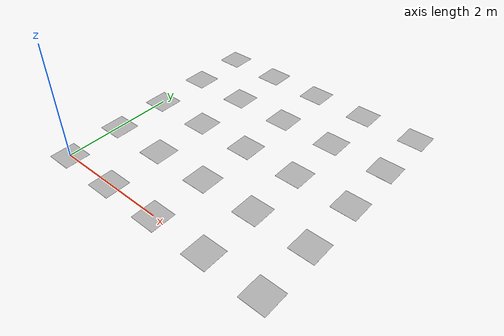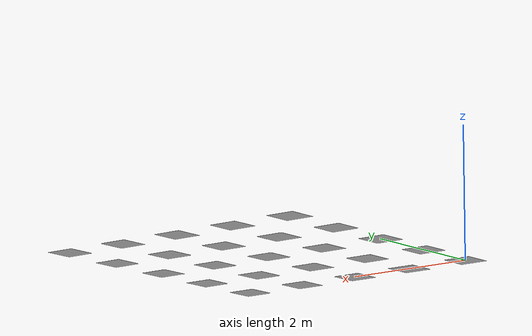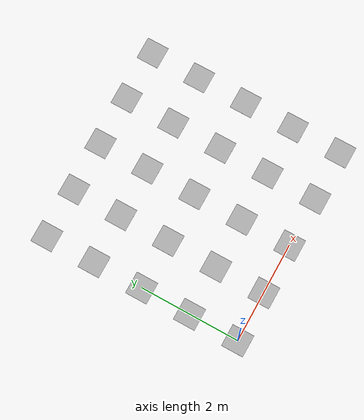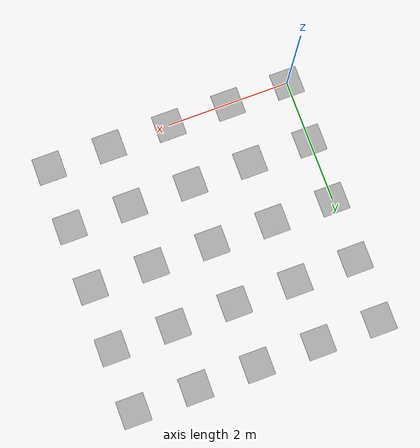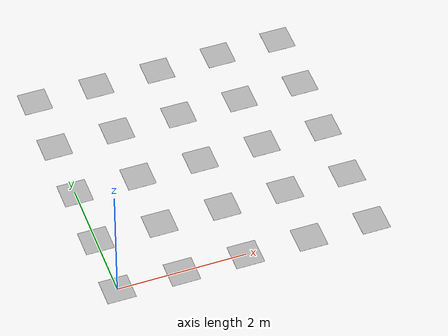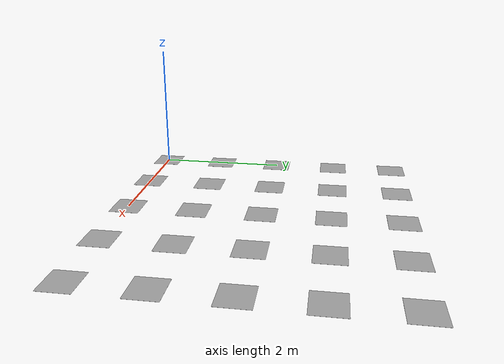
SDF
<?xml version="1.0"?>
<sdf version="1.5">
    <model name="aruco_2_25">
        <static>true</static>
        <link name="aruco_2_25_link">

<visual name="visual_marker_2_21">
    <pose>0.0 4.0 0.0 0.0 0.0 1.57079632679</pose>
    <cast_shadows>false</cast_shadows>
    <geometry>
        <box>
            <size>0.44 0.44 1e-3</size>
        </box>
    </geometry>
    <material>
        <script>
            <uri>model://aruco_Slava_Ivanov_txt/materials/scripts</uri>
            <uri>model://aruco_Slava_Ivanov_txt/materials/textures</uri>
            <name>aruco/marker_2_21</name>
        </script>
    </material>
</visual>

<visual name="visual_marker_2_22">
    <pose>1.0 4.0 0.0 0.0 0.0 1.57079632679</pose>
    <cast_shadows>false</cast_shadows>
    <geometry>
        <box>
            <size>0.44 0.44 1e-3</size>
        </box>
    </geometry>
    <material>
        <script>
            <uri>model://aruco_Slava_Ivanov_txt/materials/scripts</uri>
            <uri>model://aruco_Slava_Ivanov_txt/materials/textures</uri>
            <name>aruco/marker_2_22</name>
        </script>
    </material>
</visual>

<visual name="visual_marker_2_23">
    <pose>2.0 4.0 0.0 0.0 0.0 1.57079632679</pose>
    <cast_shadows>false</cast_shadows>
    <geometry>
        <box>
            <size>0.44 0.44 1e-3</size>
        </box>
    </geometry>
    <material>
        <script>
            <uri>model://aruco_Slava_Ivanov_txt/materials/scripts</uri>
            <uri>model://aruco_Slava_Ivanov_txt/materials/textures</uri>
            <name>aruco/marker_2_23</name>
        </script>
    </material>
</visual>

<visual name="visual_marker_2_24">
    <pose>3.0 4.0 0.0 0.0 0.0 1.57079632679</pose>
    <cast_shadows>false</cast_shadows>
    <geometry>
        <box>
            <size>0.44 0.44 1e-3</size>
        </box>
    </geometry>
    <material>
        <script>
            <uri>model://aruco_Slava_Ivanov_txt/materials/scripts</uri>
            <uri>model://aruco_Slava_Ivanov_txt/materials/textures</uri>
            <name>aruco/marker_2_24</name>
        </script>
    </material>
</visual>

<visual name="visual_marker_2_25">
    <pose>4.0 4.0 0.0 0.0 0.0 1.57079632679</pose>
    <cast_shadows>false</cast_shadows>
    <geometry>
        <box>
            <size>0.44 0.44 1e-3</size>
        </box>
    </geometry>
    <material>
        <script>
            <uri>model://aruco_Slava_Ivanov_txt/materials/scripts</uri>
            <uri>model://aruco_Slava_Ivanov_txt/materials/textures</uri>
            <name>aruco/marker_2_25</name>
        </script>
    </material>
</visual>

<visual name="visual_marker_2_46">
    <pose>0.0 3.0 0.0 0.0 0.0 1.57079632679</pose>
    <cast_shadows>false</cast_shadows>
    <geometry>
        <box>
            <size>0.44 0.44 1e-3</size>
        </box>
    </geometry>
    <material>
        <script>
            <uri>model://aruco_Slava_Ivanov_txt/materials/scripts</uri>
            <uri>model://aruco_Slava_Ivanov_txt/materials/textures</uri>
            <name>aruco/marker_2_46</name>
        </script>
    </material>
</visual>

<visual name="visual_marker_2_47">
    <pose>1.0 3.0 0.0 0.0 0.0 1.57079632679</pose>
    <cast_shadows>false</cast_shadows>
    <geometry>
        <box>
            <size>0.44 0.44 1e-3</size>
        </box>
    </geometry>
    <material>
        <script>
            <uri>model://aruco_Slava_Ivanov_txt/materials/scripts</uri>
            <uri>model://aruco_Slava_Ivanov_txt/materials/textures</uri>
            <name>aruco/marker_2_47</name>
        </script>
    </material>
</visual>

<visual name="visual_marker_2_48">
    <pose>2.0 3.0 0.0 0.0 0.0 1.57079632679</pose>
    <cast_shadows>false</cast_shadows>
    <geometry>
        <box>
            <size>0.44 0.44 1e-3</size>
        </box>
    </geometry>
    <material>
        <script>
            <uri>model://aruco_Slava_Ivanov_txt/materials/scripts</uri>
            <uri>model://aruco_Slava_Ivanov_txt/materials/textures</uri>
            <name>aruco/marker_2_48</name>
        </script>
    </material>
</visual>

<visual name="visual_marker_2_49">
    <pose>3.0 3.0 0.0 0.0 0.0 1.57079632679</pose>
    <cast_shadows>false</cast_shadows>
    <geometry>
        <box>
            <size>0.44 0.44 1e-3</size>
        </box>
    </geometry>
    <material>
        <script>
            <uri>model://aruco_Slava_Ivanov_txt/materials/scripts</uri>
            <uri>model://aruco_Slava_Ivanov_txt/materials/textures</uri>
            <name>aruco/marker_2_49</name>
        </script>
    </material>
</visual>

<visual name="visual_marker_2_50">
    <pose>4.0 3.0 0.0 0.0 0.0 1.57079632679</pose>
    <cast_shadows>false</cast_shadows>
    <geometry>
        <box>
            <size>0.44 0.44 1e-3</size>
        </box>
    </geometry>
    <material>
        <script>
            <uri>model://aruco_Slava_Ivanov_txt/materials/scripts</uri>
            <uri>model://aruco_Slava_Ivanov_txt/materials/textures</uri>
            <name>aruco/marker_2_50</name>
        </script>
    </material>
</visual>

<visual name="visual_marker_2_57">
    <pose>0.0 2.0 0.0 0.0 0.0 1.57079632679</pose>
    <cast_shadows>false</cast_shadows>
    <geometry>
        <box>
            <size>0.44 0.44 1e-3</size>
        </box>
    </geometry>
    <material>
        <script>
            <uri>model://aruco_Slava_Ivanov_txt/materials/scripts</uri>
            <uri>model://aruco_Slava_Ivanov_txt/materials/textures</uri>
            <name>aruco/marker_2_57</name>
        </script>
    </material>
</visual>

<visual name="visual_marker_2_58">
    <pose>1.0 2.0 0.0 0.0 0.0 1.57079632679</pose>
    <cast_shadows>false</cast_shadows>
    <geometry>
        <box>
            <size>0.44 0.44 1e-3</size>
        </box>
    </geometry>
    <material>
        <script>
            <uri>model://aruco_Slava_Ivanov_txt/materials/scripts</uri>
            <uri>model://aruco_Slava_Ivanov_txt/materials/textures</uri>
            <name>aruco/marker_2_58</name>
        </script>
    </material>
</visual>

<visual name="visual_marker_2_59">
    <pose>2.0 2.0 0.0 0.0 0.0 1.57079632679</pose>
    <cast_shadows>false</cast_shadows>
    <geometry>
        <box>
            <size>0.44 0.44 1e-3</size>
        </box>
    </geometry>
    <material>
        <script>
            <uri>model://aruco_Slava_Ivanov_txt/materials/scripts</uri>
            <uri>model://aruco_Slava_Ivanov_txt/materials/textures</uri>
            <name>aruco/marker_2_59</name>
        </script>
    </material>
</visual>

<visual name="visual_marker_2_60">
    <pose>3.0 2.0 0.0 0.0 0.0 1.57079632679</pose>
    <cast_shadows>false</cast_shadows>
    <geometry>
        <box>
            <size>0.44 0.44 1e-3</size>
        </box>
    </geometry>
    <material>
        <script>
            <uri>model://aruco_Slava_Ivanov_txt/materials/scripts</uri>
            <uri>model://aruco_Slava_Ivanov_txt/materials/textures</uri>
            <name>aruco/marker_2_60</name>
        </script>
    </material>
</visual>

<visual name="visual_marker_2_61">
    <pose>4.0 2.0 0.0 0.0 0.0 1.57079632679</pose>
    <cast_shadows>false</cast_shadows>
    <geometry>
        <box>
            <size>0.44 0.44 1e-3</size>
        </box>
    </geometry>
    <material>
        <script>
            <uri>model://aruco_Slava_Ivanov_txt/materials/scripts</uri>
            <uri>model://aruco_Slava_Ivanov_txt/materials/textures</uri>
            <name>aruco/marker_2_61</name>
        </script>
    </material>
</visual>

<visual name="visual_marker_2_68">
    <pose>0.0 1.0 0.0 0.0 0.0 1.57079632679</pose>
    <cast_shadows>false</cast_shadows>
    <geometry>
        <box>
            <size>0.44 0.44 1e-3</size>
        </box>
    </geometry>
    <material>
        <script>
            <uri>model://aruco_Slava_Ivanov_txt/materials/scripts</uri>
            <uri>model://aruco_Slava_Ivanov_txt/materials/textures</uri>
            <name>aruco/marker_2_68</name>
        </script>
    </material>
</visual>

<visual name="visual_marker_2_69">
    <pose>1.0 1.0 0.0 0.0 0.0 1.57079632679</pose>
    <cast_shadows>false</cast_shadows>
    <geometry>
        <box>
            <size>0.44 0.44 1e-3</size>
        </box>
    </geometry>
    <material>
        <script>
            <uri>model://aruco_Slava_Ivanov_txt/materials/scripts</uri>
            <uri>model://aruco_Slava_Ivanov_txt/materials/textures</uri>
            <name>aruco/marker_2_69</name>
        </script>
    </material>
</visual>

<visual name="visual_marker_2_70">
    <pose>2.0 1.0 0.0 0.0 0.0 1.57079632679</pose>
    <cast_shadows>false</cast_shadows>
    <geometry>
        <box>
            <size>0.44 0.44 1e-3</size>
        </box>
    </geometry>
    <material>
        <script>
            <uri>model://aruco_Slava_Ivanov_txt/materials/scripts</uri>
            <uri>model://aruco_Slava_Ivanov_txt/materials/textures</uri>
            <name>aruco/marker_2_70</name>
        </script>
    </material>
</visual>

<visual name="visual_marker_2_71">
    <pose>3.0 1.0 0.0 0.0 0.0 1.57079632679</pose>
    <cast_shadows>false</cast_shadows>
    <geometry>
        <box>
            <size>0.44 0.44 1e-3</size>
        </box>
    </geometry>
    <material>
        <script>
            <uri>model://aruco_Slava_Ivanov_txt/materials/scripts</uri>
            <uri>model://aruco_Slava_Ivanov_txt/materials/textures</uri>
            <name>aruco/marker_2_71</name>
        </script>
    </material>
</visual>

<visual name="visual_marker_2_72">
    <pose>4.0 1.0 0.0 0.0 0.0 1.57079632679</pose>
    <cast_shadows>false</cast_shadows>
    <geometry>
        <box>
            <size>0.44 0.44 1e-3</size>
        </box>
    </geometry>
    <material>
        <script>
            <uri>model://aruco_Slava_Ivanov_txt/materials/scripts</uri>
            <uri>model://aruco_Slava_Ivanov_txt/materials/textures</uri>
            <name>aruco/marker_2_72</name>
        </script>
    </material>
</visual>

<visual name="visual_marker_2_79">
    <pose>0.0 0.0 0.0 0.0 0.0 1.57079632679</pose>
    <cast_shadows>false</cast_shadows>
    <geometry>
        <box>
            <size>0.44 0.44 1e-3</size>
        </box>
    </geometry>
    <material>
        <script>
            <uri>model://aruco_Slava_Ivanov_txt/materials/scripts</uri>
            <uri>model://aruco_Slava_Ivanov_txt/materials/textures</uri>
            <name>aruco/marker_2_79</name>
        </script>
    </material>
</visual>

<visual name="visual_marker_2_80">
    <pose>1.0 0.0 0.0 0.0 0.0 1.57079632679</pose>
    <cast_shadows>false</cast_shadows>
    <geometry>
        <box>
            <size>0.44 0.44 1e-3</size>
        </box>
    </geometry>
    <material>
        <script>
            <uri>model://aruco_Slava_Ivanov_txt/materials/scripts</uri>
            <uri>model://aruco_Slava_Ivanov_txt/materials/textures</uri>
            <name>aruco/marker_2_80</name>
        </script>
    </material>
</visual>

<visual name="visual_marker_2_81">
    <pose>2.0 0.0 0.0 0.0 0.0 1.57079632679</pose>
    <cast_shadows>false</cast_shadows>
    <geometry>
        <box>
            <size>0.44 0.44 1e-3</size>
        </box>
    </geometry>
    <material>
        <script>
            <uri>model://aruco_Slava_Ivanov_txt/materials/scripts</uri>
            <uri>model://aruco_Slava_Ivanov_txt/materials/textures</uri>
            <name>aruco/marker_2_81</name>
        </script>
    </material>
</visual>

<visual name="visual_marker_2_82">
    <pose>3.0 0.0 0.0 0.0 0.0 1.57079632679</pose>
    <cast_shadows>false</cast_shadows>
    <geometry>
        <box>
            <size>0.44 0.44 1e-3</size>
        </box>
    </geometry>
    <material>
        <script>
            <uri>model://aruco_Slava_Ivanov_txt/materials/scripts</uri>
            <uri>model://aruco_Slava_Ivanov_txt/materials/textures</uri>
            <name>aruco/marker_2_82</name>
        </script>
    </material>
</visual>

<visual name="visual_marker_2_83">
    <pose>4.0 0.0 0.0 0.0 0.0 1.57079632679</pose>
    <cast_shadows>false</cast_shadows>
    <geometry>
        <box>
            <size>0.44 0.44 1e-3</size>
        </box>
    </geometry>
    <material>
        <script>
            <uri>model://aruco_Slava_Ivanov_txt/materials/scripts</uri>
            <uri>model://aruco_Slava_Ivanov_txt/materials/textures</uri>
            <name>aruco/marker_2_83</name>
        </script>
    </material>
</visual>

        </link>
    </model>
</sdf>
